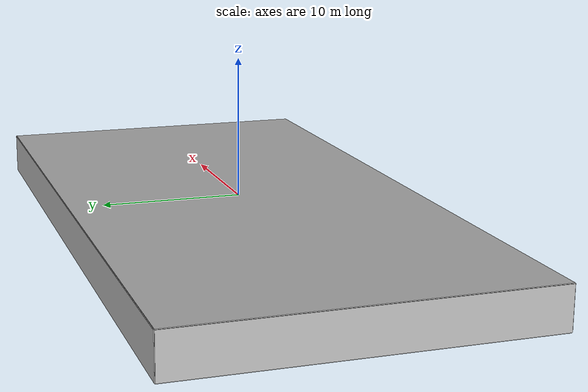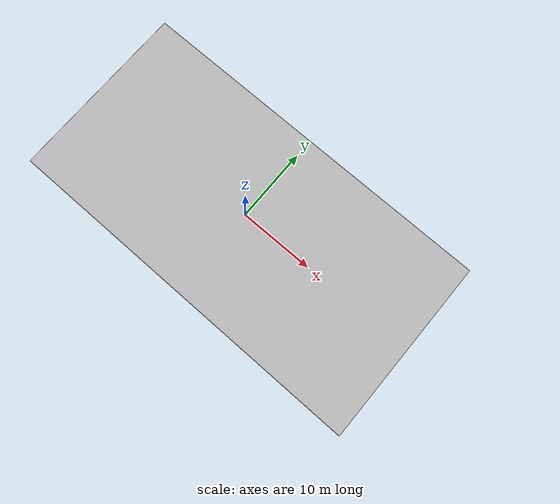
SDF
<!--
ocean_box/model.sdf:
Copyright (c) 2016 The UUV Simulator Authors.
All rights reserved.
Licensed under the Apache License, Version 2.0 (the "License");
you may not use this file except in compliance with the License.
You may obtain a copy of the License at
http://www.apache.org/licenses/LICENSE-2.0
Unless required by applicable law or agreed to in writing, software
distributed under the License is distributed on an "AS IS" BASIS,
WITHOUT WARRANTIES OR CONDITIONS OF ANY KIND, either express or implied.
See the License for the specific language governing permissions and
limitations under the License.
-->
<sdf version="1.4">
 <world name="heightmap">
  <include><uri>model://sun</uri></include>
  <include><uri>model://ocean_box</uri></include>
  <plugin name="underwater_current_plugin" filename="libuuv_underwater_current_ros_plugin.so">
   <namespace>hydrodynamics</namespace>
   <constant_current>
    <topic>current_velocity</topic>
    <velocity><mean>0</mean><min>0</min><max>5</max><mu>0.0</mu><noiseAmp>0.0</noiseAmp></velocity>
    <horizontal_angle>
     <mean>0</mean>
     <min>-3.141592653589793238</min>
     <max>3.141592653589793238</max>
     <mu>0.0</mu>
     <noiseAmp>0.0</noiseAmp>
    </horizontal_angle>
    <vertical_angle>
     <mean>0</mean>
     <min>-3.141592653589793238</min>
     <max>3.141592653589793238</max>
     <mu>0.0</mu>
     <noiseAmp>0.0</noiseAmp>
    </vertical_angle>
   </constant_current>
  </plugin>
  <plugin name="sc_interface" filename="libuuv_sc_ros_interface_plugin.so"/>
 </world>
</sdf>

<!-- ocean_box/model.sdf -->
<sdf version="1.5">
  <model name="ocean_box">
    <static>true</static>
    <link name="link">
      <visual name="ground">
        <cast_shadows>false</cast_shadows>
        <pose>0 0 -3 0 0 0</pose>
        <geometry>
          <box>
            <size>50 25 .1</size>
          </box>
        </geometry>
        <material>
          <script>
            <uri>file://Media/materials/scripts/walls.material</uri>
            <name>UUVSimulator/Walls</name>
          </script>
        </material>
      </visual>

      <collision name="ground">
        <pose>0 0 -3 0 0 0</pose>
        <geometry>
          <box>
            <size>50 25 .1</size>
          </box>
        </geometry>
      </collision>

      <visual name="surface">
        <cast_shadows>false</cast_shadows>
        <pose>0 0 0 0 0 0</pose>
        <geometry>
          <box>
            <size>50 25 .1</size>
          </box>
        </geometry>
        <material>
          <script>
            <uri>file://Media/materials/scripts/water.material</uri>
            <name>UUVSimulator/StaticDeepWater</name>
          </script>
        </material>
      </visual>

      <visual name="north">
        <cast_shadows>false</cast_shadows>
        <pose>25 0 -1.5 0 0 0</pose>
        <geometry>
          <box>
            <size>.1 25 3</size>
          </box>
        </geometry>
        <material>
          <script>
            <uri>file://Media/materials/scripts/walls.material</uri>
            <name>UUVSimulator/Walls</name>
          </script>
        </material>
      </visual>

      <visual name="south">
        <cast_shadows>false</cast_shadows>
        <pose>-25 0 -1.5 0 0 0</pose>
        <geometry>
          <box>
            <size>.1 25 3</size>
          </box>
        </geometry>
        <material>
          <script>
            <uri>file://Media/materials/scripts/walls.material</uri>
            <name>UUVSimulator/Walls</name>
          </script>
        </material>
      </visual>

      <visual name="east">
        <cast_shadows>false</cast_shadows>
        <pose>0 -12.5 -1.5 0 0 0</pose>
        <geometry>
          <box>
            <size>50 .1 3</size>
          </box>
        </geometry>
        <material>
          <script>
            <uri>file://Media/materials/scripts/walls.material</uri>
            <name>UUVSimulator/Walls</name>
          </script>
        </material>
      </visual>

      <visual name="west">
        <cast_shadows>false</cast_shadows>
        <pose>0 12.5 -1.5 0 0 0</pose>
        <geometry>
          <box>
            <size>50 .1 3</size>
          </box>
        </geometry>
        <material>
          <script>
            <uri>file://Media/materials/scripts/walls.material</uri>
            <name>UUVSimulator/Walls</name>
          </script>
        </material>
      </visual>
    </link>
  </model>
</sdf>
